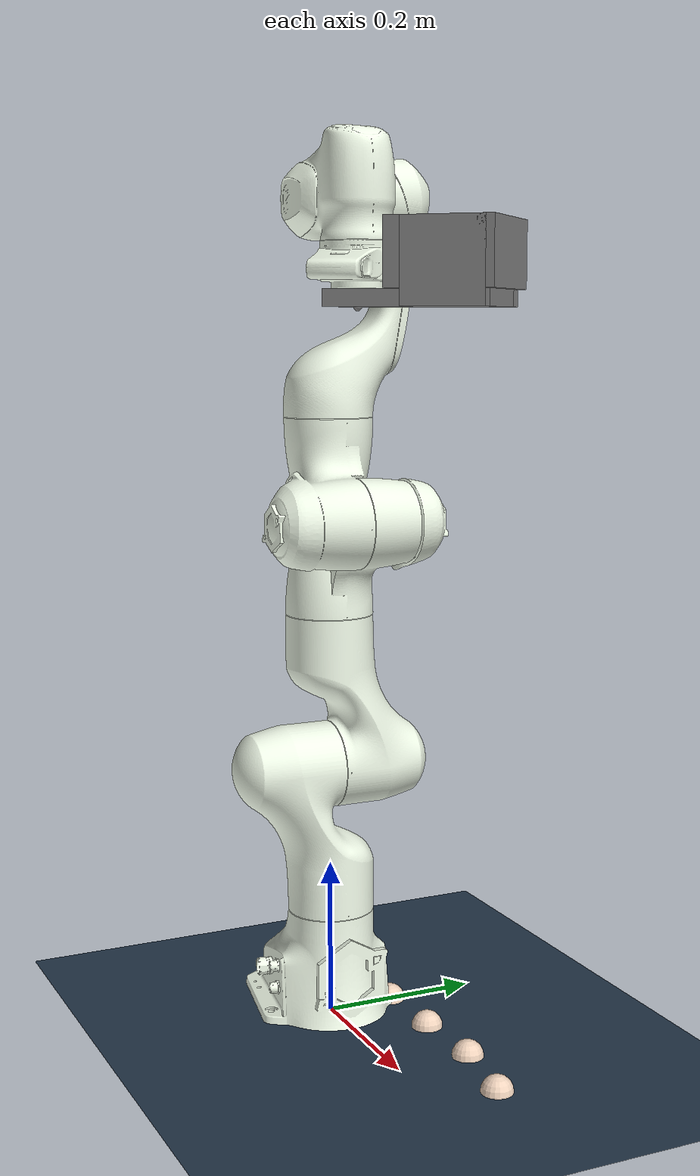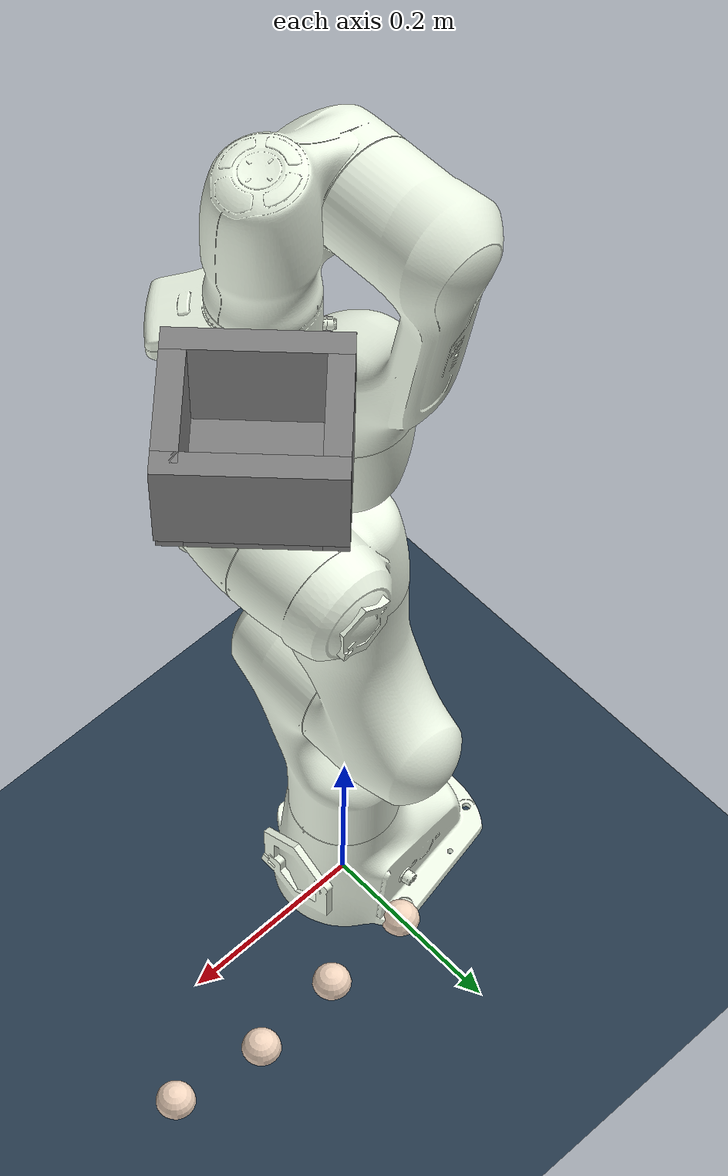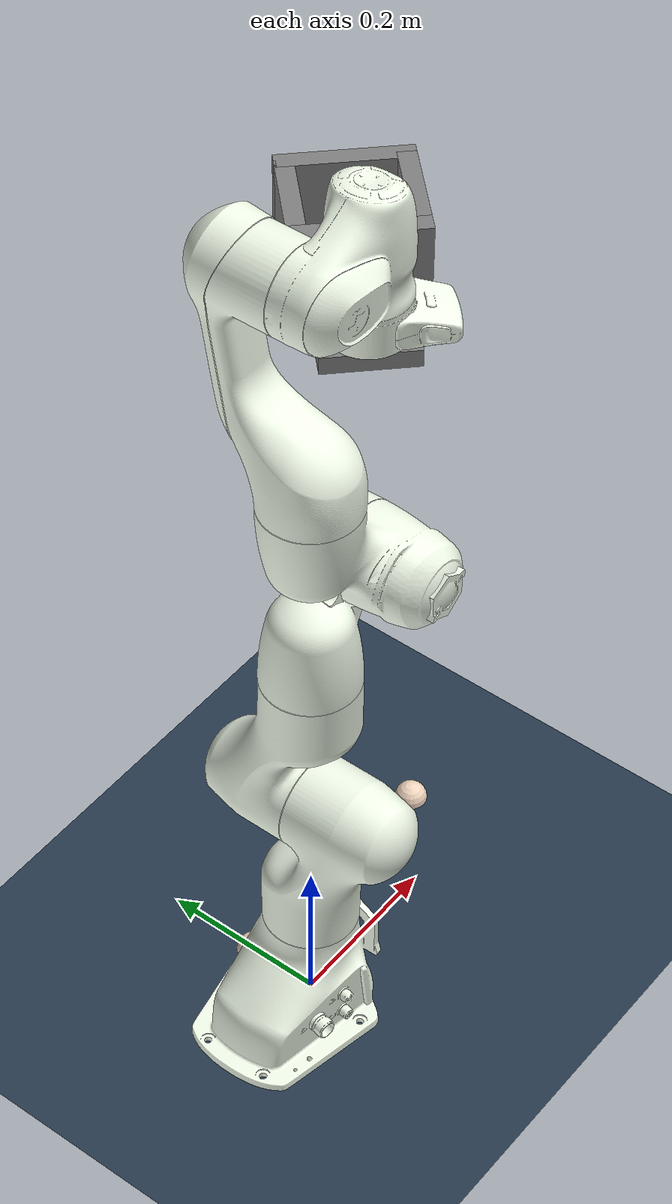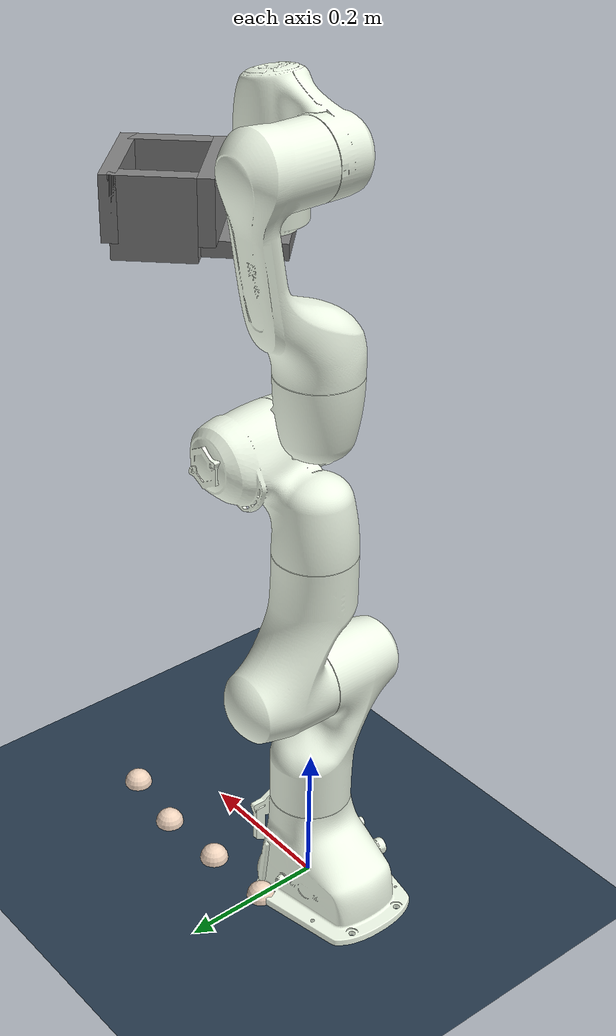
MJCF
<?xml version="1.0" ?>
<mujoco model="mujoco_panda_model">

    <include file="other/simple_scene.xml"/>
    <include file="panda/assets.xml"/>
    <compiler meshdir=""/>

    <default>
    <default class="block_visual">
      <geom contype="0" conaffinity="0"/>
    </default>
    <default class="block_collision">
      <geom contype="1" conaffinity="1" condim="4" solimp="0.99 0.99 0.01" solref="0.01 1"/>
    </default>
    <site rgba="1 0 0 .5"/>
  </default>

    <option cone="elliptic" timestep="0.001" integrator="Euler">
        <flag gravity="enable"/>
    </option>

    <worldbody>
        <include file="panda/arm_with_tray.xml"/>
        <body name="ball1" pos="0.0 0.085 0 "> <!-- for diagonal: 0.291 0.0165 0.5 -->
            <geom name="ball1_geom" class="block_collision" size=".02 0.02 0.02" rgba="0.96 0.85 0.76 1" friction="0.2 0.2 0.0001" mass="0.4" type="sphere"/>
            <joint name="ball1_freefall" type="free"/>
        </body>
        <body name="ball2" pos="0.1 0.09 0 "> <!-- for diagonal: 0.291 0.0165 0.5 -->
            <geom name="ball2_geom" class="block_collision" size=".02 0.02 0.02" rgba="0.96 0.85 0.76 1" friction="0.2 0.2 0.0001" mass="0.25" type="sphere"/>
            <joint name="ball2_freefall" type="free"/>
        </body>
        <body name="ball3" pos="0.2 0.095 0 "> <!-- for diagonal: 0.291 0.0165 0.5 -->
            <geom name="ball3_geom" class="block_collision" size=".02 0.02 0.02" rgba="0.96 0.85 0.76 1" friction="0.2 0.2 0.0001" mass="0.5" type="sphere"/>
            <joint name="ball3_freefall" type="free"/>
        </body>
        <body name="ball4" pos="0.3 0.08 0 "> <!-- for diagonal: 0.291 0.0165 0.5 -->
            <geom name="ball4_geom" class="block_collision" size=".02 0.02 0.02" rgba="0.96 0.85 0.76 1" friction="0.2 0.2 0.0001" mass="0.35" type="sphere"/>
            <joint name="ball4_freefall" type="free"/>
        </body>
    </worldbody>

    <actuator>
        <include file="panda/actuators/torque.xml"/>
    </actuator>

    <sensor>
        <include file="panda/sensors/ft_sensor.xml" />
    </sensor>

</mujoco>

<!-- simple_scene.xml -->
<mujoco>

    <asset>
        <texture name="texplane" type="2d" builtin="checker" rgb1=".2 .3 .4" rgb2=".1 0.15 0.2"
                width="512" height="512"/>
        <material name="MatGnd" reflectance="0.5" texture="texplane" texrepeat="1 1" texuniform="true"/>
    </asset>

    <worldbody>
        <light pos="0 0 1000" castshadow="false"/>
        <geom name="ground" pos="0 0 0" size="5 5 10" material="MatGnd" type="plane" contype="1" conaffinity="1"/>
    </worldbody>
</mujoco>

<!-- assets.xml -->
<mujoco>

    <compiler angle="radian"/>

    <asset>
        <mesh name="link0_collision" file="meshes/collision/link0.stl"/>
        <mesh name="link1_collision" file="meshes/collision/link1.stl"/>
        <mesh name="link2_collision" file="meshes/collision/link2.stl"/>
        <mesh name="link3_collision" file="meshes/collision/link3.stl"/>
        <mesh name="link4_collision" file="meshes/collision/link4.stl"/>
        <mesh name="link5_collision" file="meshes/collision/link5.stl"/>
        <mesh name="link6_collision" file="meshes/collision/link6.stl"/>
        <mesh name="link7_collision" file="meshes/collision/link7.stl"/>
        <mesh name="hand_collision" file="meshes/collision/hand.stl"/>
        <mesh name="finger_collision" file="meshes/collision/finger.stl" scale='1.75 1.0 1.75'/>
        <mesh name="ultrasound_probe_collision" file="meshes/ultrasound_probe_mesh.stl"  scale="0.001 0.001 0.001"/>
        <mesh name="link0_visual" file="meshes/visual/link0.stl"/>
        <mesh name="link1_visual" file="meshes/visual/link1.stl"/>
        <mesh name="link2_visual" file="meshes/visual/link2.stl"/>
        <mesh name="link3_visual" file="meshes/visual/link3.stl"/>
        <mesh name="link4_visual" file="meshes/visual/link4.stl"/>
        <mesh name="link5_visual" file="meshes/visual/link5.stl"/>
        <mesh name="link6_visual" file="meshes/visual/link6.stl"/>
        <mesh name="link7_visual" file="meshes/visual/link7.stl"/>
        <mesh name="hand_visual" file="meshes/visual/hand.stl"/>
        <mesh name="finger_visual" file="meshes/collision/finger.stl" scale='1.75 1.0 1.75'/>
        <mesh name="ultrasound_probe_visual" file="meshes/ultrasound_probe_mesh.stl"  scale="0.001 0.001 0.001"/>
    </asset>
    <default>
        <default class="panda">

            <joint pos="0 0 0" axis="0 0 1" limited="true" damping="100"/>
            <position forcelimited="true" ctrllimited="true" user="1002 40 2001 -0.005 0.005"/>
            <default class="visual">
                <geom contype="0" conaffinity="0" group="0" type="mesh" rgba=".95 .99 .92 1" mass="0"/>
            </default>

            <default class="collision">
                <geom contype="1" conaffinity="1" group="3" type="mesh" rgba=".5 .6 .7 1"/>
            </default>
             <default class="panda_finger">
                <joint damping="100" armature='5'/>
            </default>
        </default>
    </default>
</mujoco>

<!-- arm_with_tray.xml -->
<mujoco>

    <body name="panda_link0" childclass="panda" >
        <inertial pos="0 0 0" quat="1 0 0 0" mass="3.06" diaginertia="0.3 0.3 0.3" />
        <geom class="visual" mesh="link0_visual"/>

        <body name="panda_link1" pos="0 0 0.333">
            <inertial pos="3.875e-03 2.081e-03 -0.1750" quat="1 0 0 0" mass="4.970684" fullinertia="7.0337e-01 7.0661e-01 9.1170e-03 -1.3900e-04 6.7720e-03 1.9169e-02" />
            <joint name="panda_joint1" range="-2.8973 2.8973" frictionloss="5"/>
            <geom class="visual" mesh="link1_visual"/>
            <geom class="collision" mesh="link1_collision"/>

            <body name="panda_link2" pos="0 0 0" quat="0.707107 -0.707107 0 0">
                <inertial pos="-3.141e-03 -2.872e-02 3.495e-03" quat="1 0 0 0" mass="0.646926" fullinertia="7.9620e-03 2.8110e-02 2.5995e-02 -3.9250e-03 1.0254e-02 7.0400e-04" />
                <joint name="panda_joint2" range="-1.7628 1.7628" frictionloss="2"/>
                <geom class="visual" mesh="link2_visual"/>
                <geom class="collision" mesh="link2_collision"/>

                <body name="panda_link3" pos="0 -0.316 0" quat="0.707107 0.707107 0 0">
                    <inertial pos="2.7518e-02 3.9252e-02 -6.6502e-02" quat="1 0 0 0" mass="3.228604" fullinertia="3.7242e-02 3.6155e-02 1.0830e-02 -4.7610e-03 -1.1396e-02 -1.2805e-02" />
                    <joint name="panda_joint3" range="-2.8973 2.8973" frictionloss="2"/>
                    <geom class="visual" mesh="link3_visual"/>
                    <geom class="collision" mesh="link3_collision"/>

                    <body name="panda_link4" pos="0.0825 0 0" quat="0.707107 0.707107 0 0">
                        <inertial pos="-5.317e-02 1.04419e-01 2.7454e-02" quat="1 0 0 0" mass="3.587895" fullinertia="2.5853e-02 1.9552e-02 2.8323e-02 7.7960e-03 -1.3320e-03 8.6410e-03" />
                        <joint name="panda_joint4" range="-3.0718 -0.4" frictionloss="0.5"/>
                        <geom class="visual" mesh="link4_visual"/>
                        <geom class="collision" mesh="link4_collision"/>

                        <body name="panda_link5" pos="-0.0825 0.384 0" quat="0.707107 -0.707107 0 0">
                            <inertial pos="-1.1953e-02 4.1065e-02 -3.8437e-02" quat="1 0 0 0" mass="1.225946" fullinertia="3.5549e-02 2.9474e-02 8.6270e-03 -2.1170e-03 -4.0370e-03 2.2900e-04" />
                            <joint name="panda_joint5" range="-2.8973 2.8973" frictionloss="1"/>
                            <geom class="visual" mesh="link5_visual"/>
                            <geom class="collision" mesh="link5_collision"/>

                            <body name="panda_link6" pos="0 0 0" quat="0.707107 0.707107 0 0">
                                <inertial pos="6.0149e-02 -1.4117e-02 -1.0517e-02" quat="1 0 0 0" mass="1.666555" fullinertia="1.9640e-03 4.3540e-03 5.4330e-03 1.0900e-04 -1.1580e-03 3.4100e-04" />
                                <joint name="panda_joint6" range="-1.6573 2.1127" frictionloss="0.5"/>
                                <geom class="visual" mesh="link6_visual"/>
                                <geom class="collision" mesh="link6_collision"/>

                                <body name="panda_link7" pos="0.088 0 0" euler='1.57 0 0.'>
                                    <inertial pos="1.0517e-02 -4.252e-03 6.1597e-02" quat="1 0 0 0" mass="7.35522e-01" fullinertia="1.2516e-02 1.0027e-02 4.8150e-03 -4.2800e-04 -1.1960e-03 -7.4100e-04" />
                                    <joint name="panda_joint7" range="-2.8973 2.8973" frictionloss="0.5"/>
                                    <geom class="visual" mesh="link7_visual"/>
                                    <geom class="collision" mesh="link7_collision"/>

                                    <body name="block" pos="0 0 0.117" euler="0 0 -0.785">
                                        <geom pos="0.075 0 0" size="0.10 .05 0.01" mass="0.00001" type="box" group="0" />
                                        <geom pos="0.125 0.06 -0.04" size="0.05 0.01 0.05" mass="0.00001" type="box" group="0" />
                                        <geom pos="0.125 -0.06 -0.04" size="0.05 0.01 0.05" mass="0.00001" type="box" group="0" />
                                        <geom pos="0.065 0 -0.05" size="0.01 0.07 0.04" mass="0.00001" type="box" group="0" />
                                        <geom pos="0.175 0 -0.05" size="0.01 0.07 0.04" mass="0.00001" type="box" group="0" />

                                        <site name='ee_site' pos='0 0 0.01' size="0.005, 0.005, 0.005" euler='0 0 -1.57'/>
                                    </body>
                                </body>
                            </body>
                        </body>
                    </body>
                </body>
            </body>
        </body>
    </body>
</mujoco>

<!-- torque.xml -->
<mujoco>
    <motor name="arm_direct_actuator_1" joint="panda_joint1" class="panda" forcerange="-87 87" ctrlrange="-87 87"/>
    <motor name="arm_direct_actuator_2" joint="panda_joint2" class="panda" forcerange="-87 87" ctrlrange="-87 87"/>
    <motor name="arm_direct_actuator_3" joint="panda_joint3" class="panda" forcerange="-87 87" ctrlrange="-87 87"/>
    <motor name="arm_direct_actuator_4" joint="panda_joint4" class="panda" forcerange="-87 87" ctrlrange="-87 87"/>
    <motor name="arm_direct_actuator_5" joint="panda_joint5" class="panda" forcerange="-12 12" ctrlrange="-12 12"/>
    <motor name="arm_direct_actuator_6" joint="panda_joint6" class="panda" forcerange="-12 12" ctrlrange="-12 12"/>
    <motor name="arm_direct_actuator_7" joint="panda_joint7" class="panda" forcerange="-12 12" ctrlrange="-12 12"/>
</mujoco>

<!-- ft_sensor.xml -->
<mujoco>
  <force name="ee_force_sensor" site="ee_site"/>
  <torque name="ee_torque_sensor" site="ee_site"/>
</mujoco>
